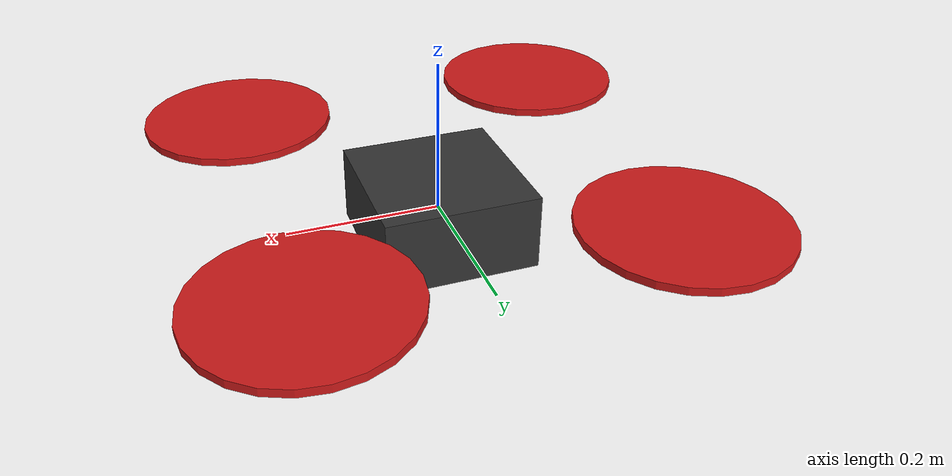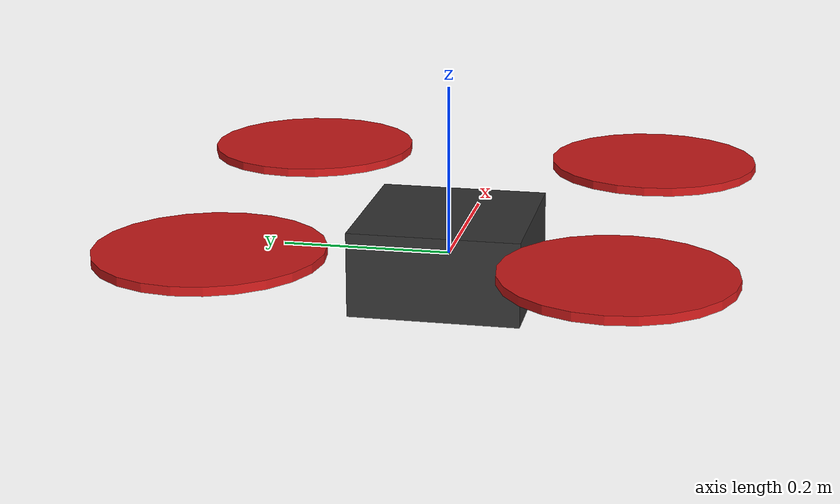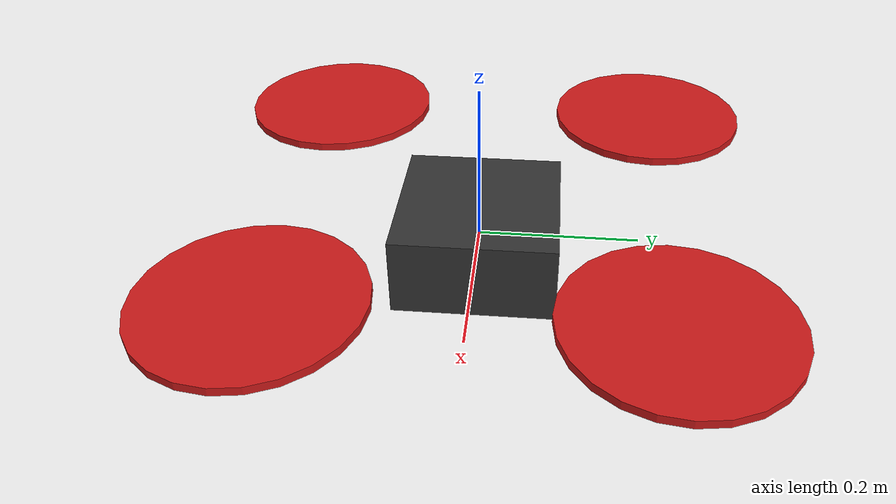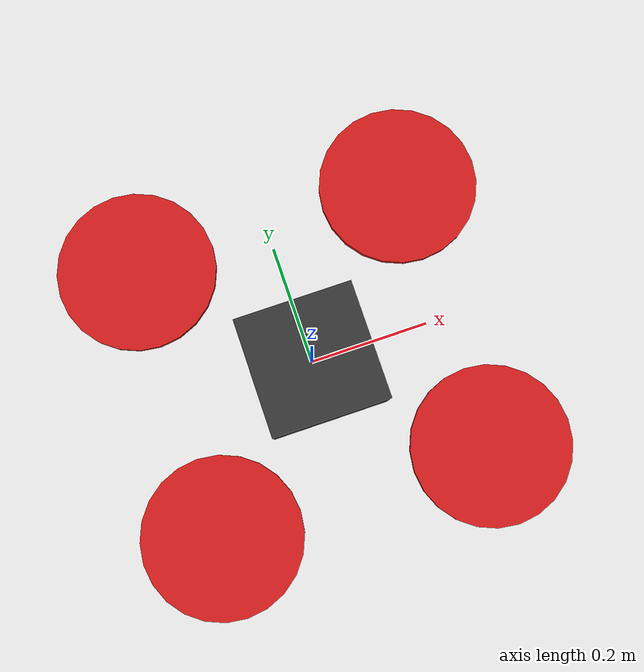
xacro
<?xml version="1.0"?>
<robot xmlns:xacro="http://www.ros.org/wiki/xacro" name="nidar_drone">

    <!-- Core Properties -->
    <!-- Target AUW: 2.5 kg. Distributed as 2.0 kg body + 4x 0.125 kg rotors -->
    <xacro:property name = "body_mass" value = "2.0"/>
    <xacro:property name = "rotor_mass" value = "0.125"/>
    <!-- 10 inch propeller diameter = 0.254 meters -->
    <xacro:property name="prop_radius" value="${0.254 / 2}"/>
    <xacro:property name="arm_length" value="0.22"/>

    <!-- Base Link Chassis-->
     <link name = 'base_link'>
        <inertial>
            <mass value = "${body_mass}"/>
            <origin xyz = '0 0 0' rpy = '0 0 0'/>
            <inertia ixx="0.01" ixy="0" ixz="0" iyy="0.01" iyz="0" izz="0.02"/>
        </inertial>

        <visual>
            <geometry>
                <box size = '0.2 0.2 0.1'/>
            </geometry>
            <material name = 'dark_grey'>
                <color rgba='0.2 0.2 0.2 1.0'/>
            </material>
        </visual>

        <collision>
            <geometry>
                <box size = '0.2 0.2 0.1'/>
            </geometry>
        </collision>
     </link>

    <!--Rotor Macro-->
    <xacro:macro name="rotor" params="prefix x_reflect y_reflect">
    <link name="${prefix}_rotor">
      <inertial>
        <mass value="${rotor_mass}"/>
        <origin xyz="0 0 0" rpy="0 0 0"/>
        <inertia ixx="0.0001" ixy="0" ixz="0" iyy="0.0001" iyz="0" izz="0.0002"/>
      </inertial>
      <visual>
        <geometry>
          <cylinder radius="${prop_radius}" length="0.01"/>
        </geometry>
        <material name="red">
          <color rgba="0.8 0.1 0.1 1.0"/>
        </material>
      </visual>
      <collision>
        <geometry>
          <cylinder radius="${prop_radius}" length="0.01"/>
        </geometry>
      </collision>
    </link>

    <joint name="${prefix}_rotor_joint" type="continuous">
      <parent link="base_link"/>
      <child link="${prefix}_rotor"/>
      <origin xyz="${x_reflect * arm_length} ${y_reflect * arm_length} 0.06" rpy="0 0 0"/>
      <axis xyz="0 0 1"/>
    </joint>
  </xacro:macro>

    <!-- Instantiate Quadcopter Rotors -->
  <xacro:rotor prefix="front_right" x_reflect="1" y_reflect="-1" />
  <xacro:rotor prefix="front_left" x_reflect="1" y_reflect="1" />
  <xacro:rotor prefix="rear_right" x_reflect="-1" y_reflect="-1" />
  <xacro:rotor prefix="rear_left" x_reflect="-1" y_reflect="1" />
</robot>
